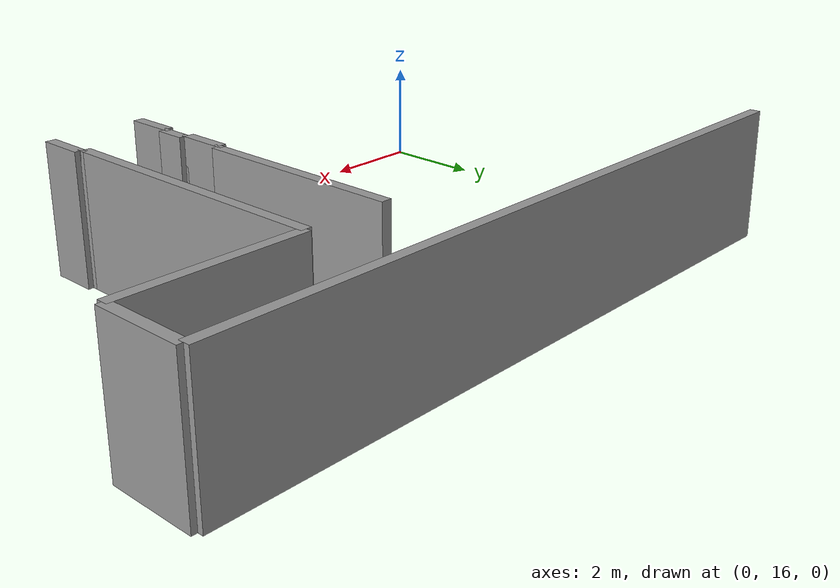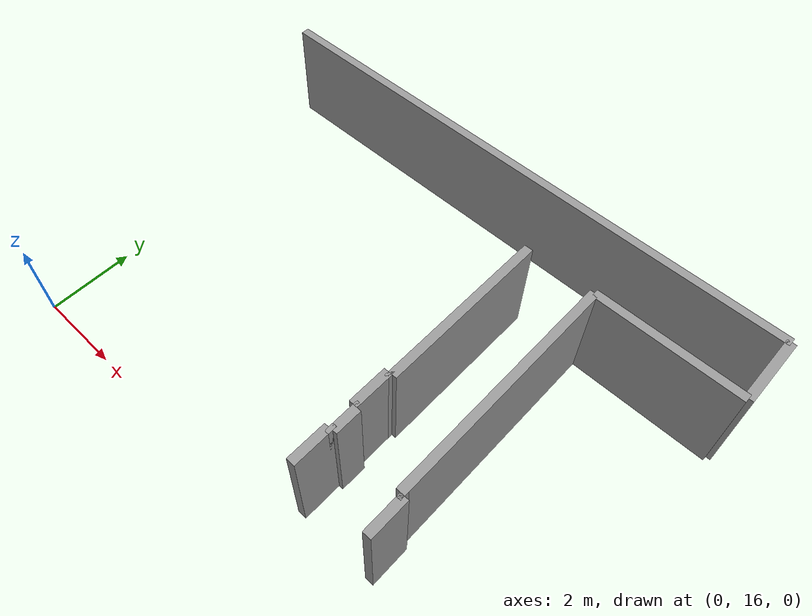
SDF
<sdf version="1.4">
 <model name="Levine">
  <link name="Wall_17">
   <collision name="Wall_17_Collision">
    <geometry><box><size>13.2 0.2 2.5</size></box></geometry>
    <pose>0 0 1.25 0 0 0</pose>
   </collision>
   <visual name="Wall_17_Visual">
    <pose>0 0 1.25 0 0 0</pose>
    <geometry><box><size>13.2 0.2 2.5</size></box></geometry>
    <material>
     <script><uri>file://media/materials/scripts/gazebo.material</uri><name>Gazebo/Grey</name></script>
    </material>
   </visual>
   <velocity_decay><linear>0</linear><angular>0</angular></velocity_decay>
   <pose>6.0 24.6 0 0 0 0.0</pose>
  </link>
  <link name="Wall_18">
   <collision name="Wall_18_Collision">
    <geometry><box><size>1.6 0.2 2.5</size></box></geometry>
    <pose>0 0 1.25 0 0 0</pose>
   </collision>
   <visual name="Wall_18_Visual">
    <pose>0 0 1.25 0 0 0</pose>
    <geometry><box><size>1.6 0.2 2.5</size></box></geometry>
    <material>
     <script><uri>file://media/materials/scripts/gazebo.material</uri><name>Gazebo/Grey</name></script>
    </material>
   </visual>
   <velocity_decay><linear>0</linear><angular>0</angular></velocity_decay>
   <pose>12.6 23.8 0 0 0 -1.57079632679</pose>
  </link>
  <link name="Wall_19">
   <collision name="Wall_19_Collision">
    <geometry><box><size>3.3 0.2 2.5</size></box></geometry>
    <pose>0 0 1.25 0 0 0</pose>
   </collision>
   <visual name="Wall_19_Visual">
    <pose>0 0 1.25 0 0 0</pose>
    <geometry><box><size>3.3 0.2 2.5</size></box></geometry>
    <material>
     <script><uri>file://media/materials/scripts/gazebo.material</uri><name>Gazebo/Grey</name></script>
    </material>
   </visual>
   <velocity_decay><linear>0</linear><angular>0</angular></velocity_decay>
   <pose>10.95 23.0 0 0 0 3.14159265359</pose>
  </link>
  <link name="Wall_34">
   <collision name="Wall_34_Collision">
    <geometry><box><size>0.9 0.2 2.5</size></box></geometry>
    <pose>0 0 1.25 0 0 0</pose>
   </collision>
   <visual name="Wall_34_Visual">
    <pose>0 0 1.25 0 0 0</pose>
    <geometry><box><size>0.9 0.2 2.5</size></box></geometry>
    <material>
     <script><uri>file://media/materials/scripts/gazebo.material</uri><name>Gazebo/Grey</name></script>
    </material>
   </visual>
   <velocity_decay><linear>0</linear><angular>0</angular></velocity_decay>
   <pose>9.4 17.05 0 0 0 1.57079632679</pose>
  </link>
  <link name="Wall_35">
   <collision name="Wall_35_Collision">
    <geometry><box><size>0.1 0.2 2.5</size></box></geometry>
    <pose>0 0 1.25 0 0 0</pose>
   </collision>
   <visual name="Wall_35_Visual">
    <pose>0 0 1.25 0 0 0</pose>
    <geometry><box><size>0.1 0.2 2.5</size></box></geometry>
    <material>
     <script><uri>file://media/materials/scripts/gazebo.material</uri><name>Gazebo/Grey</name></script>
    </material>
   </visual>
   <velocity_decay><linear>0</linear><angular>0</angular></velocity_decay>
   <pose>9.35 17.5 0 0 0 3.14159265359</pose>
  </link>
  <link name="Wall_36">
   <collision name="Wall_36_Collision">
    <geometry><box><size>5.5 0.2 2.5</size></box></geometry>
    <pose>0 0 1.25 0 0 0</pose>
   </collision>
   <visual name="Wall_36_Visual">
    <pose>0 0 1.25 0 0 0</pose>
    <geometry><box><size>5.5 0.2 2.5</size></box></geometry>
    <material>
     <script><uri>file://media/materials/scripts/gazebo.material</uri><name>Gazebo/Grey</name></script>
    </material>
   </visual>
   <velocity_decay><linear>0</linear><angular>0</angular></velocity_decay>
   <pose>9.3 20.25 0 0 0 1.57079632679</pose>
  </link>
  <link name="Wall_94">
   <collision name="Wall_94_Collision">
    <geometry><box><size>4.0 0.2 2.5</size></box></geometry>
    <pose>0 0 1.25 0 0 0</pose>
   </collision>
   <visual name="Wall_94_Visual">
    <pose>0 0 1.25 0 0 0</pose>
    <geometry><box><size>4.0 0.2 2.5</size></box></geometry>
    <material>
     <script><uri>file://media/materials/scripts/gazebo.material</uri><name>Gazebo/Grey</name></script>
    </material>
   </visual>
   <velocity_decay><linear>0</linear><angular>0</angular></velocity_decay>
   <pose>7.7 21.0 0 0 0 -1.57079632679</pose>
  </link>
  <link name="Wall_95">
   <collision name="Wall_95_Collision">
    <geometry><box><size>0.1 0.2 2.5</size></box></geometry>
    <pose>0 0 1.25 0 0 0</pose>
   </collision>
   <visual name="Wall_95_Visual">
    <pose>0 0 1.25 0 0 0</pose>
    <geometry><box><size>0.1 0.2 2.5</size></box></geometry>
    <material>
     <script><uri>file://media/materials/scripts/gazebo.material</uri><name>Gazebo/Grey</name></script>
    </material>
   </visual>
   <velocity_decay><linear>0</linear><angular>0</angular></velocity_decay>
   <pose>7.65 19.0 0 0 0 3.14159265359</pose>
  </link>
  <link name="Wall_96">
   <collision name="Wall_96_Collision">
    <geometry><box><size>0.9 0.2 2.5</size></box></geometry>
    <pose>0 0 1.25 0 0 0</pose>
   </collision>
   <visual name="Wall_96_Visual">
    <pose>0 0 1.25 0 0 0</pose>
    <geometry><box><size>0.9 0.2 2.5</size></box></geometry>
    <material>
     <script><uri>file://media/materials/scripts/gazebo.material</uri><name>Gazebo/Grey</name></script>
    </material>
   </visual>
   <velocity_decay><linear>0</linear><angular>0</angular></velocity_decay>
   <pose>7.6 18.55 0 0 0 -1.57079632679</pose>
  </link>
  <link name="Wall_97">
   <collision name="Wall_97_Collision">
    <geometry><box><size>0.1 0.2 2.5</size></box></geometry>
    <pose>0 0 1.25 0 0 0</pose>
   </collision>
   <visual name="Wall_97_Visual">
    <pose>0 0 1.25 0 0 0</pose>
    <geometry><box><size>0.1 0.2 2.5</size></box></geometry>
    <material>
     <script><uri>file://media/materials/scripts/gazebo.material</uri><name>Gazebo/Grey</name></script>
    </material>
   </visual>
   <velocity_decay><linear>0</linear><angular>0</angular></velocity_decay>
   <pose>7.65 18.1 0 0 0 0.0</pose>
  </link>
  <link name="Wall_98">
   <collision name="Wall_98_Collision">
    <geometry><box><size>0.6 0.2 2.5</size></box></geometry>
    <pose>0 0 1.25 0 0 0</pose>
   </collision>
   <visual name="Wall_98_Visual">
    <pose>0 0 1.25 0 0 0</pose>
    <geometry><box><size>0.6 0.2 2.5</size></box></geometry>
    <material>
     <script><uri>file://media/materials/scripts/gazebo.material</uri><name>Gazebo/Grey</name></script>
    </material>
   </visual>
   <velocity_decay><linear>0</linear><angular>0</angular></velocity_decay>
   <pose>7.7 17.8 0 0 0 -1.57079632679</pose>
  </link>
  <link name="Wall_99">
   <collision name="Wall_99_Collision">
    <geometry><box><size>0.1 0.2 2.5</size></box></geometry>
    <pose>0 0 1.25 0 0 0</pose>
   </collision>
   <visual name="Wall_99_Visual">
    <pose>0 0 1.25 0 0 0</pose>
    <geometry><box><size>0.1 0.2 2.5</size></box></geometry>
    <material>
     <script><uri>file://media/materials/scripts/gazebo.material</uri><name>Gazebo/Grey</name></script>
    </material>
   </visual>
   <velocity_decay><linear>0</linear><angular>0</angular></velocity_decay>
   <pose>7.65 17.5 0 0 0 3.14159265359</pose>
  </link>
  <link name="Wall_100">
   <collision name="Wall_100_Collision">
    <geometry><box><size>0.9 0.2 2.5</size></box></geometry>
    <pose>0 0 1.25 0 0 0</pose>
   </collision>
   <visual name="Wall_100_Visual">
    <pose>0 0 1.25 0 0 0</pose>
    <geometry><box><size>0.9 0.2 2.5</size></box></geometry>
    <material>
     <script><uri>file://media/materials/scripts/gazebo.material</uri><name>Gazebo/Grey</name></script>
    </material>
   </visual>
   <velocity_decay><linear>0</linear><angular>0</angular></velocity_decay>
   <pose>7.6 17.05 0 0 0 -1.57079632679</pose>
  </link>
  <static>1</static>
 </model>
</sdf>
